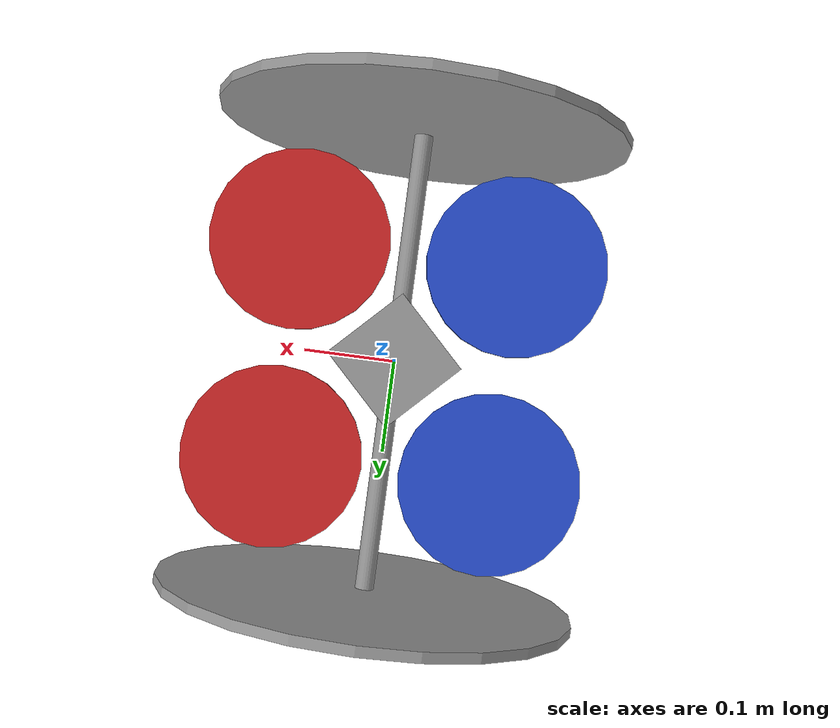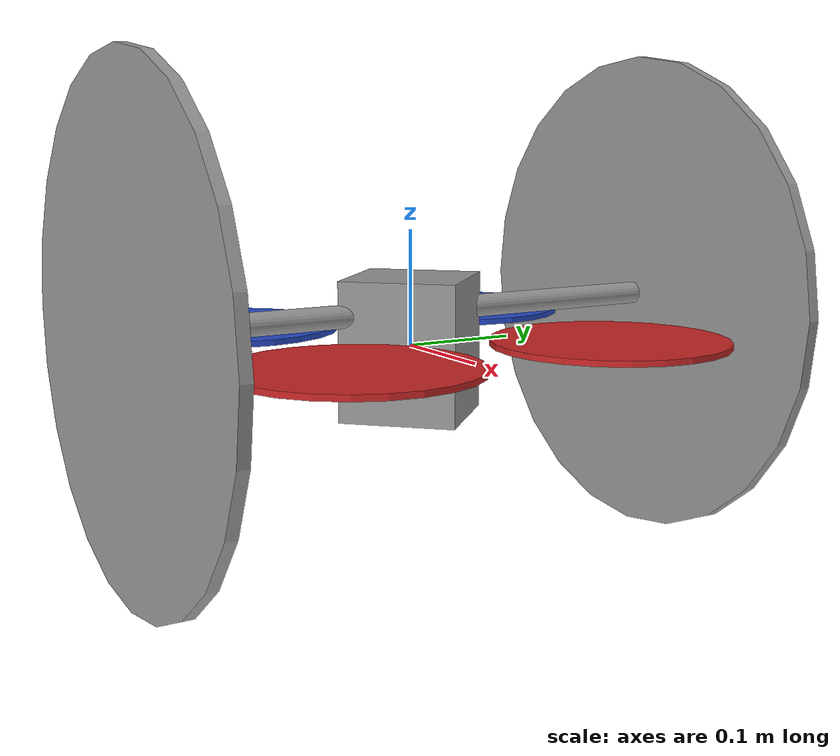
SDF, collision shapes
<sdf version='1.7'>
  <model name='hummingbird'>
    <link name='wheelbird/base_link'>
      <inertial>
        <pose>0 0 0 0 -0 0</pose>
        <mass>0.71</mass>
        <inertia>
          <ixx>0.007002</ixx>
          <ixy>0</ixy>
          <ixz>0</ixz>
          <iyy>0.007627</iyy>
          <iyz>0</iyz>
          <izz>0.012627</izz>
        </inertia>
      </inertial>
      <collision name='wheelbird/base_link_fixed_joint_lump__stand_collision'>
        <pose>0 0 0.03 1.5708 -0 0</pose>
        <geometry>
          <cylinder>
            <length>0.5</length>
            <radius>0.01</radius>
          </cylinder>
        </geometry>
        <surface>
          <contact>
            <ode>
              <kp>1e+07</kp>
              <kd>1</kd>
            </ode>
          </contact>
          <friction>
            <ode/>
          </friction>
        </surface>
      </collision>
      <collision name='wheelbird/base_link_inertia_collision_1'>
        <pose>0 0 0 0 -0 0.785398</pose>
        <geometry>
          <box>
            <size>0.1 0.1 0.12</size>
          </box>
        </geometry>
      </collision>
      <visual name='wheelbird/base_link_fixed_joint_lump__stand_visual'>
        <pose>0 0 0.03 1.5708 -0 0</pose>
        <geometry>
          <cylinder>
            <length>0.5</length>
            <radius>0.01</radius>
          </cylinder>
        </geometry>
        <material>
          <script>
            <name>Gazebo/Grey</name>
            <uri>file://media/materials/scripts/gazebo.material</uri>
          </script>
        </material>
      </visual>
      <visual name='wheelbird/base_link_inertia_visual_1'>
        <pose>0 0 0 0 -0 0.785398</pose>
        <geometry>
          <mesh>
            <scale>1 1 1</scale>
            <uri>model://wheelbird/meshes/hummingbird.dae</uri>
          </mesh>
        </geometry>
      </visual>
    </link>
    <joint name='left_wheel' type='revolute'>
      <pose relative_to='wheelbird/base_link'>0 0.25 0.03 0 -0 0</pose>
      <parent>wheelbird/base_link</parent>
      <child>left_wheel_link</child>
      <axis>
        <xyz>0 1 0</xyz>
        <limit>
          <lower>-1e+16</lower>
          <upper>1e+16</upper>
        </limit>
        <dynamics>
          <spring_reference>0</spring_reference>
          <spring_stiffness>0</spring_stiffness>
        </dynamics>
      </axis>
    </joint>
    <link name='left_wheel_link'>
      <pose relative_to='left_wheel'>0 0 0 0 -0 0</pose>
      <inertial>
        <pose>0 0 0 0 -0 0</pose>
        <mass>0.19</mass>
        <inertia>
          <ixx>0.00741</ixx>
          <ixy>0</ixy>
          <ixz>0</ixz>
          <iyy>0.00741</iyy>
          <iyz>0</iyz>
          <izz>0.00439</izz>
        </inertia>
      </inertial>
      <collision name='left_wheel_link_collision'>
        <pose>0 0 0 -1.5708 0 0</pose>
        <geometry>
          <cylinder>
            <length>0.01</length>
            <radius>0.22</radius>
          </cylinder>
        </geometry>
        <surface>
          <contact>
            <ode>
              <kp>1e+06</kp>
              <kd>1</kd>
            </ode>
          </contact>
          <friction>
            <ode/>
          </friction>
        </surface>
      </collision>
      <visual name='left_wheel_link_visual'>
        <pose>0 0 0 -1.5708 0 0</pose>
        <geometry>
          <mesh>
            <scale>1 1 1</scale>
            <uri>model://wheelbird/meshes/wheelbird_wheel.stl</uri>
          </mesh>
        </geometry>
        <material>
          <script>
            <name>Gazebo/Grey</name>
            <uri>file://media/materials/scripts/gazebo.material</uri>
          </script>
        </material>
      </visual>
    </link>
    <joint name='right_wheel' type='revolute'>
      <pose relative_to='wheelbird/base_link'>0 -0.25 0.03 0 -0 0</pose>
      <parent>wheelbird/base_link</parent>
      <child>right_wheel_link</child>
      <axis>
        <xyz>0 1 0</xyz>
        <limit>
          <lower>-1e+16</lower>
          <upper>1e+16</upper>
        </limit>
        <dynamics>
          <spring_reference>0</spring_reference>
          <spring_stiffness>0</spring_stiffness>
        </dynamics>
      </axis>
    </joint>
    <link name='right_wheel_link'>
      <pose relative_to='right_wheel'>0 0 0 0 -0 0</pose>
      <inertial>
        <pose>0 0 0 0 -0 0</pose>
        <mass>0.19</mass>
        <inertia>
          <ixx>0.00741</ixx>
          <ixy>0</ixy>
          <ixz>0</ixz>
          <iyy>0.00741</iyy>
          <iyz>0</iyz>
          <izz>0.00439</izz>
        </inertia>
      </inertial>
      <collision name='right_wheel_link_collision'>
        <pose>0 0 0 1.5708 -0 0</pose>
        <geometry>
          <cylinder>
            <length>0.01</length>
            <radius>0.22</radius>
          </cylinder>
        </geometry>
        <surface>
          <contact>
            <ode>
              <kp>1e+06</kp>
              <kd>1</kd>
            </ode>
          </contact>
          <friction>
            <ode/>
          </friction>
        </surface>
      </collision>
      <visual name='right_wheel_link_visual'>
        <pose>0 0 0 1.5708 -0 0</pose>
        <geometry>
          <mesh>
            <scale>1 1 1</scale>
            <uri>model://wheelbird/meshes/wheelbird_wheel.stl</uri>
          </mesh>
        </geometry>
        <material>
          <script>
            <name>Gazebo/Grey</name>
            <uri>file://media/materials/scripts/gazebo.material</uri>
          </script>
        </material>
      </visual>
    </link>
    <joint name='wheelbird/imu_joint' type='revolute'>
      <pose relative_to='wheelbird/base_link'>0 0 0 0 -0 0</pose>
      <parent>wheelbird/base_link</parent>
      <child>wheelbird/imu_link</child>
      <axis>
        <xyz>1 0 0</xyz>
        <limit>
          <lower>0</lower>
          <upper>0</upper>
          <effort>0</effort>
          <velocity>0</velocity>
        </limit>
        <dynamics>
          <spring_reference>0</spring_reference>
          <spring_stiffness>0</spring_stiffness>
        </dynamics>
      </axis>
    </joint>
    <link name='wheelbird/imu_link'>
      <pose relative_to='wheelbird/imu_joint'>0 0 0 0 -0 0</pose>
      <inertial>
        <pose>0 0 0 0 -0 0</pose>
        <mass>0.015</mass>
        <inertia>
          <ixx>1e-05</ixx>
          <ixy>0</ixy>
          <ixz>0</ixz>
          <iyy>1e-05</iyy>
          <iyz>0</iyz>
          <izz>1e-05</izz>
        </inertia>
      </inertial>
    </link>
    <joint name='wheelbird/imugt_joint' type='revolute'>
      <pose relative_to='wheelbird/base_link'>0 0 0 0 -0 0</pose>
      <parent>wheelbird/base_link</parent>
      <child>wheelbird/imugt_link</child>
      <axis>
        <xyz>1 0 0</xyz>
        <limit>
          <lower>0</lower>
          <upper>0</upper>
          <effort>0</effort>
          <velocity>0</velocity>
        </limit>
        <dynamics>
          <spring_reference>0</spring_reference>
          <spring_stiffness>0</spring_stiffness>
        </dynamics>
      </axis>
    </joint>
    <link name='wheelbird/imugt_link'>
      <pose relative_to='wheelbird/imugt_joint'>0 0 0 0 -0 0</pose>
      <inertial>
        <pose>0 0 0 0 -0 0</pose>
        <mass>1e-05</mass>
        <inertia>
          <ixx>1e-05</ixx>
          <ixy>0</ixy>
          <ixz>0</ixz>
          <iyy>1e-05</iyy>
          <iyz>0</iyz>
          <izz>1e-05</izz>
        </inertia>
      </inertial>
    </link>
    <joint name='wheelbird/odometry_sensorgt_joint' type='revolute'>
      <pose relative_to='wheelbird/base_link'>0 0 0 0 -0 0</pose>
      <parent>wheelbird/base_link</parent>
      <child>wheelbird/odometry_sensorgt_link</child>
      <axis>
        <xyz>1 0 0</xyz>
        <limit>
          <lower>0</lower>
          <upper>0</upper>
          <effort>0</effort>
          <velocity>0</velocity>
        </limit>
        <dynamics>
          <spring_reference>0</spring_reference>
          <spring_stiffness>0</spring_stiffness>
        </dynamics>
      </axis>
    </joint>
    <link name='wheelbird/odometry_sensorgt_link'>
      <pose relative_to='wheelbird/odometry_sensorgt_joint'>0 0 0 0 -0 0</pose>
      <inertial>
        <pose>0 0 0 0 -0 0</pose>
        <mass>1e-05</mass>
        <inertia>
          <ixx>1e-05</ixx>
          <ixy>0</ixy>
          <ixz>0</ixz>
          <iyy>1e-05</iyy>
          <iyz>0</iyz>
          <izz>1e-05</izz>
        </inertia>
      </inertial>
    </link>
    <joint name='wheelbird/rotor_0_joint' type='revolute'>
      <pose relative_to='wheelbird/base_link'>0.120208 -0.120208 0.01 0 -0 0</pose>
      <parent>wheelbird/base_link</parent>
      <child>wheelbird/rotor_0</child>
      <axis>
        <xyz>0 0 1</xyz>
        <limit>
          <lower>-1e+16</lower>
          <upper>1e+16</upper>
        </limit>
        <dynamics>
          <spring_reference>0</spring_reference>
          <spring_stiffness>0</spring_stiffness>
        </dynamics>
      </axis>
    </joint>
    <link name='wheelbird/rotor_0'>
      <pose relative_to='wheelbird/rotor_0_joint'>0 0 0 0 -0 0</pose>
      <inertial>
        <pose>0 0 0 0 -0 0</pose>
        <mass>0.009</mass>
        <inertia>
          <ixx>1.755e-06</ixx>
          <ixy>0</ixy>
          <ixz>0</ixz>
          <iyy>7.50675e-05</iyy>
          <iyz>0</iyz>
          <izz>7.66875e-05</izz>
        </inertia>
      </inertial>
      <collision name='wheelbird/rotor_0_collision'>
        <pose>0 0 0 0 -0 0</pose>
        <geometry>
          <cylinder>
            <length>0.005</length>
            <radius>0.1</radius>
          </cylinder>
        </geometry>
        <surface>
          <contact>
            <ode/>
          </contact>
          <friction>
            <ode/>
          </friction>
        </surface>
      </collision>
      <visual name='wheelbird/rotor_0_visual'>
        <pose>0 0 0 0 -0 0</pose>
        <geometry>
          <mesh>
            <scale>0.1 0.1 0.1</scale>
            <uri>model://wheelbird/meshes/propeller_ccw.dae</uri>
          </mesh>
        </geometry>
        <material>
          <script>
            <name>Gazebo/Red</name>
            <uri>file://media/materials/scripts/gazebo.material</uri>
          </script>
        </material>
      </visual>
    </link>
    <joint name='wheelbird/rotor_1_joint' type='revolute'>
      <pose relative_to='wheelbird/base_link'>-0.120208 -0.120208 0.01 0 -0 0</pose>
      <parent>wheelbird/base_link</parent>
      <child>wheelbird/rotor_1</child>
      <axis>
        <xyz>0 0 1</xyz>
        <limit>
          <lower>-1e+16</lower>
          <upper>1e+16</upper>
        </limit>
        <dynamics>
          <spring_reference>0</spring_reference>
          <spring_stiffness>0</spring_stiffness>
        </dynamics>
      </axis>
    </joint>
    <link name='wheelbird/rotor_1'>
      <pose relative_to='wheelbird/rotor_1_joint'>0 0 0 0 -0 0</pose>
      <inertial>
        <pose>0 0 0 0 -0 0</pose>
        <mass>0.009</mass>
        <inertia>
          <ixx>1.755e-06</ixx>
          <ixy>0</ixy>
          <ixz>0</ixz>
          <iyy>7.50675e-05</iyy>
          <iyz>0</iyz>
          <izz>7.66875e-05</izz>
        </inertia>
      </inertial>
      <collision name='wheelbird/rotor_1_collision'>
        <pose>0 0 0 0 -0 0</pose>
        <geometry>
          <cylinder>
            <length>0.005</length>
            <radius>0.1</radius>
          </cylinder>
        </geometry>
        <surface>
          <contact>
            <ode/>
          </contact>
          <friction>
            <ode/>
          </friction>
        </surface>
      </collision>
      <visual name='wheelbird/rotor_1_visual'>
        <pose>0 0 0 0 -0 0</pose>
        <geometry>
          <mesh>
            <scale>0.1 0.1 0.1</scale>
            <uri>model://wheelbird/meshes/propeller_cw.dae</uri>
          </mesh>
        </geometry>
        <material>
          <script>
            <name>Gazebo/Blue</name>
            <uri>file://media/materials/scripts/gazebo.material</uri>
          </script>
        </material>
      </visual>
    </link>
    <joint name='wheelbird/rotor_2_joint' type='revolute'>
      <pose relative_to='wheelbird/base_link'>-0.120208 0.120208 0.01 0 -0 0</pose>
      <parent>wheelbird/base_link</parent>
      <child>wheelbird/rotor_2</child>
      <axis>
        <xyz>0 0 1</xyz>
        <limit>
          <lower>-1e+16</lower>
          <upper>1e+16</upper>
        </limit>
        <dynamics>
          <spring_reference>0</spring_reference>
          <spring_stiffness>0</spring_stiffness>
        </dynamics>
      </axis>
    </joint>
    <link name='wheelbird/rotor_2'>
      <pose relative_to='wheelbird/rotor_2_joint'>0 0 0 0 -0 0</pose>
      <inertial>
        <pose>0 0 0 0 -0 0</pose>
        <mass>0.009</mass>
        <inertia>
          <ixx>1.755e-06</ixx>
          <ixy>0</ixy>
          <ixz>0</ixz>
          <iyy>7.50675e-05</iyy>
          <iyz>0</iyz>
          <izz>7.66875e-05</izz>
        </inertia>
      </inertial>
      <collision name='wheelbird/rotor_2_collision'>
        <pose>0 0 0 0 -0 0</pose>
        <geometry>
          <cylinder>
            <length>0.005</length>
            <radius>0.1</radius>
          </cylinder>
        </geometry>
        <surface>
          <contact>
            <ode/>
          </contact>
          <friction>
            <ode/>
          </friction>
        </surface>
      </collision>
      <visual name='wheelbird/rotor_2_visual'>
        <pose>0 0 0 0 -0 0</pose>
        <geometry>
          <mesh>
            <scale>0.1 0.1 0.1</scale>
            <uri>model://wheelbird/meshes/propeller_ccw.dae</uri>
          </mesh>
        </geometry>
        <material>
          <script>
            <name>Gazebo/Blue</name>
            <uri>file://media/materials/scripts/gazebo.material</uri>
          </script>
        </material>
      </visual>
    </link>
    <joint name='wheelbird/rotor_3_joint' type='revolute'>
      <pose relative_to='wheelbird/base_link'>0.120208 0.120208 0.01 0 -0 0</pose>
      <parent>wheelbird/base_link</parent>
      <child>wheelbird/rotor_3</child>
      <axis>
        <xyz>0 0 1</xyz>
        <limit>
          <lower>-1e+16</lower>
          <upper>1e+16</upper>
        </limit>
        <dynamics>
          <spring_reference>0</spring_reference>
          <spring_stiffness>0</spring_stiffness>
        </dynamics>
      </axis>
    </joint>
    <link name='wheelbird/rotor_3'>
      <pose relative_to='wheelbird/rotor_3_joint'>0 0 0 0 -0 0</pose>
      <inertial>
        <pose>0 0 0 0 -0 0</pose>
        <mass>0.009</mass>
        <inertia>
          <ixx>1.755e-06</ixx>
          <ixy>0</ixy>
          <ixz>0</ixz>
          <iyy>7.50675e-05</iyy>
          <iyz>0</iyz>
          <izz>7.66875e-05</izz>
        </inertia>
      </inertial>
      <collision name='wheelbird/rotor_3_collision'>
        <pose>0 0 0 0 -0 0</pose>
        <geometry>
          <cylinder>
            <length>0.005</length>
            <radius>0.1</radius>
          </cylinder>
        </geometry>
        <surface>
          <contact>
            <ode/>
          </contact>
          <friction>
            <ode/>
          </friction>
        </surface>
      </collision>
      <visual name='wheelbird/rotor_3_visual'>
        <pose>0 0 0 0 -0 0</pose>
        <geometry>
          <mesh>
            <scale>0.1 0.1 0.1</scale>
            <uri>model://wheelbird/meshes/propeller_cw.dae</uri>
          </mesh>
        </geometry>
        <material>
          <script>
            <name>Gazebo/Red</name>
            <uri>file://media/materials/scripts/gazebo.material</uri>
          </script>
        </material>
      </visual>
    </link>
    <plugin name='multirotor_base_plugin' filename='librotors_gazebo_multirotor_base_plugin.so'>
      <robotNamespace>wheelbird</robotNamespace>
      <linkName>wheelbird/base_link</linkName>
      <rotorVelocitySlowdownSim>10</rotorVelocitySlowdownSim>
    </plugin>
    <plugin name='wheelbird_front-right_motor_model' filename='librotors_gazebo_motor_model.so'>
      <robotNamespace>wheelbird</robotNamespace>
      <jointName>wheelbird/rotor_0_joint</jointName>
      <linkName>wheelbird/rotor_0</linkName>
      <turningDirection>ccw</turningDirection>
      <timeConstantUp>0.0125</timeConstantUp>
      <timeConstantDown>0.025</timeConstantDown>
      <maxRotVelocity>838</maxRotVelocity>
      <motorConstant>8.54858e-06</motorConstant>
      <momentConstant>0.016</momentConstant>
      <commandSubTopic>command/motor_speed</commandSubTopic>
      <motorNumber>0</motorNumber>
      <rotorDragCoefficient>8.06428e-05</rotorDragCoefficient>
      <rollingMomentCoefficient>1e-06</rollingMomentCoefficient>
      <motorSpeedPubTopic>motor_speed/0</motorSpeedPubTopic>
      <rotorVelocitySlowdownSim>10</rotorVelocitySlowdownSim>
    </plugin>
    <plugin name='wheelbird_back-right_motor_model' filename='librotors_gazebo_motor_model.so'>
      <robotNamespace>wheelbird</robotNamespace>
      <jointName>wheelbird/rotor_1_joint</jointName>
      <linkName>wheelbird/rotor_1</linkName>
      <turningDirection>cw</turningDirection>
      <timeConstantUp>0.0125</timeConstantUp>
      <timeConstantDown>0.025</timeConstantDown>
      <maxRotVelocity>838</maxRotVelocity>
      <motorConstant>8.54858e-06</motorConstant>
      <momentConstant>0.016</momentConstant>
      <commandSubTopic>command/motor_speed</commandSubTopic>
      <motorNumber>1</motorNumber>
      <rotorDragCoefficient>8.06428e-05</rotorDragCoefficient>
      <rollingMomentCoefficient>1e-06</rollingMomentCoefficient>
      <motorSpeedPubTopic>motor_speed/1</motorSpeedPubTopic>
      <rotorVelocitySlowdownSim>10</rotorVelocitySlowdownSim>
    </plugin>
    <plugin name='wheelbird_back-left_motor_model' filename='librotors_gazebo_motor_model.so'>
      <robotNamespace>wheelbird</robotNamespace>
      <jointName>wheelbird/rotor_2_joint</jointName>
      <linkName>wheelbird/rotor_2</linkName>
      <turningDirection>ccw</turningDirection>
      <timeConstantUp>0.0125</timeConstantUp>
      <timeConstantDown>0.025</timeConstantDown>
      <maxRotVelocity>838</maxRotVelocity>
      <motorConstant>8.54858e-06</motorConstant>
      <momentConstant>0.016</momentConstant>
      <commandSubTopic>command/motor_speed</commandSubTopic>
      <motorNumber>2</motorNumber>
      <rotorDragCoefficient>8.06428e-05</rotorDragCoefficient>
      <rollingMomentCoefficient>1e-06</rollingMomentCoefficient>
      <motorSpeedPubTopic>motor_speed/2</motorSpeedPubTopic>
      <rotorVelocitySlowdownSim>10</rotorVelocitySlowdownSim>
    </plugin>
    <plugin name='wheelbird_front-left_motor_model' filename='librotors_gazebo_motor_model.so'>
      <robotNamespace>wheelbird</robotNamespace>
      <jointName>wheelbird/rotor_3_joint</jointName>
      <linkName>wheelbird/rotor_3</linkName>
      <turningDirection>cw</turningDirection>
      <timeConstantUp>0.0125</timeConstantUp>
      <timeConstantDown>0.025</timeConstantDown>
      <maxRotVelocity>838</maxRotVelocity>
      <motorConstant>8.54858e-06</motorConstant>
      <momentConstant>0.016</momentConstant>
      <commandSubTopic>command/motor_speed</commandSubTopic>
      <motorNumber>3</motorNumber>
      <rotorDragCoefficient>8.06428e-05</rotorDragCoefficient>
      <rollingMomentCoefficient>1e-06</rollingMomentCoefficient>
      <motorSpeedPubTopic>motor_speed/3</motorSpeedPubTopic>
      <rotorVelocitySlowdownSim>10</rotorVelocitySlowdownSim>
    </plugin>
    <plugin name='controller_interface' filename='librotors_gazebo_controller_interface.so'>
      <robotNamespace>wheelbird</robotNamespace>
      <commandAttitudeThrustSubTopic>command/attitude</commandAttitudeThrustSubTopic>
      <commandRateThrustSubTopic>command/rate</commandRateThrustSubTopic>
      <commandMotorSpeedSubTopic>command/motor_speed</commandMotorSpeedSubTopic>
      <imuSubTopic>imu</imuSubTopic>
      <motorSpeedCommandPubTopic>command/motor_speed</motorSpeedCommandPubTopic>
    </plugin>
    <plugin name='mavlink_interface' filename='librotors_gazebo_mavlink_interface.so'>
      <robotNamespace>wheelbird</robotNamespace>
      <mavlinkControlSubTopic>/mavlink/from</mavlinkControlSubTopic>
      <imuSubTopic>imu</imuSubTopic>
      <mavlinkHilSensorPubTopic>/mavlink/to</mavlinkHilSensorPubTopic>
      <motorSpeedsPubTopic>command/motor_speed</motorSpeedsPubTopic>
      <gpsUpdateFreq>5.0</gpsUpdateFreq>
      <rotorCount>4</rotorCount>
      <referenceMagNorth>0.21475</referenceMagNorth>
      <referenceMagEast>0.00797</referenceMagEast>
      <referenceMagDown>0.42817</referenceMagDown>
      <referenceLatitude>47.3667</referenceLatitude>
      <referenceLongitude>8.55</referenceLongitude>
      <referenceAltitude>500.0</referenceAltitude>
    </plugin>
    <plugin name='rotors_gazebo_imu_plugin' filename='librotors_gazebo_imu_plugin.so'>
      <robotNamespace>wheelbird</robotNamespace>
      <linkName>wheelbird/imu_link</linkName>
      <imuTopic>imu</imuTopic>
      <gyroscopeNoiseDensity>0.0003394</gyroscopeNoiseDensity>
      <gyroscopeRandomWalk>3.8785e-05</gyroscopeRandomWalk>
      <gyroscopeBiasCorrelationTime>1000.0</gyroscopeBiasCorrelationTime>
      <gyroscopeTurnOnBiasSigma>0.0087</gyroscopeTurnOnBiasSigma>
      <accelerometerNoiseDensity>0.004</accelerometerNoiseDensity>
      <accelerometerRandomWalk>0.006</accelerometerRandomWalk>
      <accelerometerBiasCorrelationTime>300.0</accelerometerBiasCorrelationTime>
      <accelerometerTurnOnBiasSigma>0.196</accelerometerTurnOnBiasSigma>
    </plugin>
    <plugin name='rotors_gazebo_imugt_plugin' filename='librotors_gazebo_imu_plugin.so'>
      <robotNamespace>wheelbird</robotNamespace>
      <linkName>wheelbird/imugt_link</linkName>
      <imuTopic>ground_truth/imu</imuTopic>
      <gyroscopeNoiseDensity>0.0</gyroscopeNoiseDensity>
      <gyroscopeRandomWalk>0.0</gyroscopeRandomWalk>
      <gyroscopeBiasCorrelationTime>1000.0</gyroscopeBiasCorrelationTime>
      <gyroscopeTurnOnBiasSigma>0.0</gyroscopeTurnOnBiasSigma>
      <accelerometerNoiseDensity>0.0</accelerometerNoiseDensity>
      <accelerometerRandomWalk>0.0</accelerometerRandomWalk>
      <accelerometerBiasCorrelationTime>300.0</accelerometerBiasCorrelationTime>
      <accelerometerTurnOnBiasSigma>0.0</accelerometerTurnOnBiasSigma>
    </plugin>
    <plugin name='odometry_sensorgt' filename='librotors_gazebo_odometry_plugin.so'>
      <linkName>wheelbird/odometry_sensorgt_link</linkName>
      <robotNamespace>wheelbird</robotNamespace>
      <poseTopic>ground_truth/pose</poseTopic>
      <poseWithCovarianceTopic>ground_truth/pose_with_covariance</poseWithCovarianceTopic>
      <positionTopic>ground_truth/position</positionTopic>
      <transformTopic>ground_truth/transform</transformTopic>
      <odometryTopic>ground_truth/odometry</odometryTopic>
      <parentFrameId>world</parentFrameId>
      <childFrameId>wheelbird/base_link</childFrameId>
      <measurementDivisor>1</measurementDivisor>
      <measurementDelay>0</measurementDelay>
      <unknownDelay>0.0</unknownDelay>
      <noiseNormalPosition>0 0 0</noiseNormalPosition>
      <noiseNormalQuaternion>0 0 0</noiseNormalQuaternion>
      <noiseNormalLinearVelocity>0 0 0</noiseNormalLinearVelocity>
      <noiseNormalAngularVelocity>0 0 0</noiseNormalAngularVelocity>
      <noiseUniformPosition>0 0 0</noiseUniformPosition>
      <noiseUniformQuaternion>0 0 0</noiseUniformQuaternion>
      <noiseUniformLinearVelocity>0 0 0</noiseUniformLinearVelocity>
      <noiseUniformAngularVelocity>0 0 0</noiseUniformAngularVelocity>
    </plugin>
    <frame name='wheel_stand' attached_to='wheelbird/base_link'>
      <pose>0 0 0 0 -0 0</pose>
    </frame>
    <frame name='stand' attached_to='wheel_stand'/>
    <frame name='wheelbird/base_joint' attached_to='wheelbird/base_link'>
      <pose>0 0 0 0 -0 0</pose>
    </frame>
    <frame name='wheelbird/base_link_inertia' attached_to='wheelbird/base_joint'/>
  </model>
</sdf>
